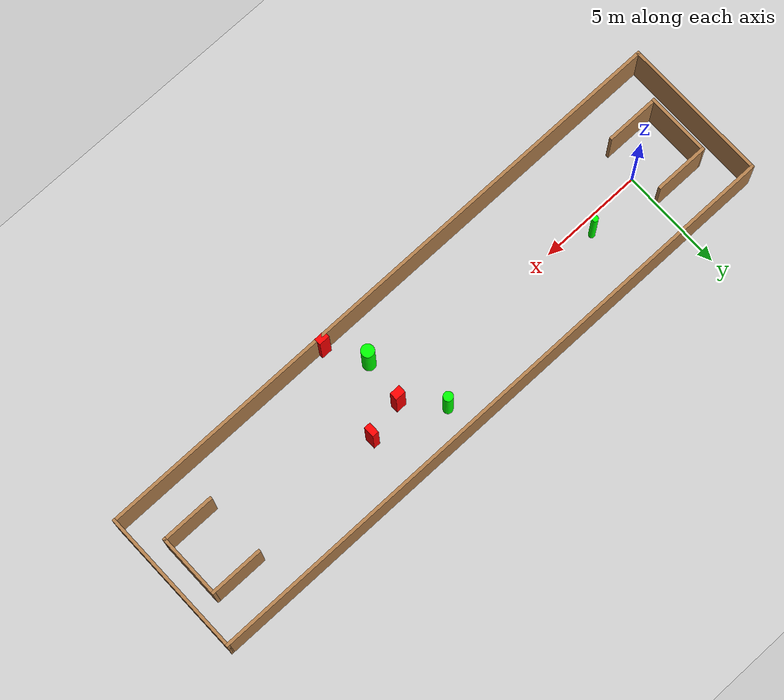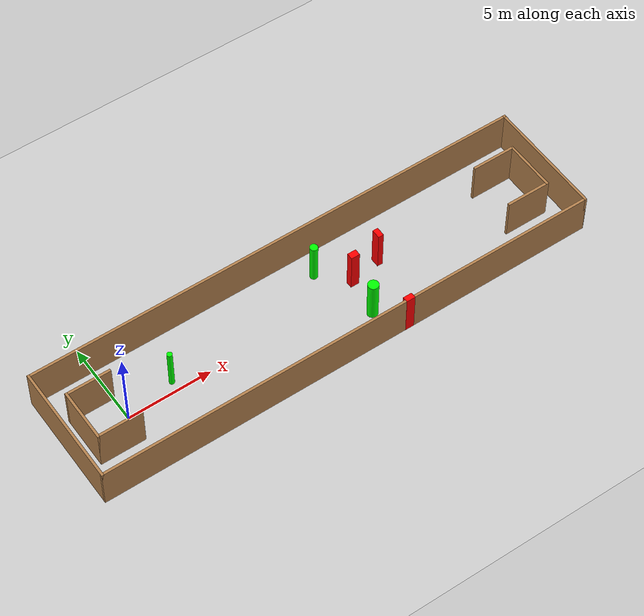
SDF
<sdf version="1.7">
 <world name="default">
  <light name="sun" type="directional">
   <pose>0 0 10 0 -0 0</pose>
   <diffuse>0.8 0.8 0.8 1</diffuse>
   <specular>0.2 0.2 0.2 1</specular>
   <attenuation>
    <range>1000</range>
    <constant>0.9</constant>
    <linear>0.01</linear>
    <quadratic>0.001</quadratic>
   </attenuation>
   <direction>-0.5 0.1 -0.9</direction>
   <spot><inner_angle>0</inner_angle><outer_angle>0</outer_angle><falloff>0</falloff></spot>
  </light>
  <model name="ground_plane">
   <static>1</static>
   <link name="link">
    <collision name="collision">
     <geometry><plane><normal>0 0 1</normal><size>100 100</size></plane></geometry>
     <surface>
      <contact><collide_bitmask>65535</collide_bitmask></contact>
      <friction><ode><mu>100</mu><mu2>50</mu2></ode></friction>
     </surface>
    </collision>
    <visual name="visual">
     <cast_shadows>0</cast_shadows>
     <geometry><plane><normal>0 0 1</normal><size>100 100</size></plane></geometry>
     <material>
      <script><uri>file://media/materials/scripts/gazebo.material</uri><name>Gazebo/Grey</name></script>
     </material>
    </visual>
   </link>
  </model>
  <gravity>0 0 -9.8</gravity>
  <magnetic_field>6e-06 2.3e-05 -4.2e-05</magnetic_field>
  <atmosphere type="adiabatic"/>
  <physics type="ode">
   <max_step_size>0.001</max_step_size>
   <real_time_factor>1</real_time_factor>
   <real_time_update_rate>1000</real_time_update_rate>
  </physics>
  <scene><ambient>0.4 0.4 0.4 1</ambient><background>0.7 0.7 0.7 1</background><shadows>1</shadows></scene>
  <spherical_coordinates>
   <surface_model>EARTH_WGS84</surface_model>
   <latitude_deg>0</latitude_deg>
   <longitude_deg>0</longitude_deg>
   <elevation>0</elevation>
   <heading_deg>0</heading_deg>
  </spherical_coordinates>
  <model name="my_base_walls">
   <link name="Wall_0">
    <collision name="Wall_0_Collision">
     <geometry><box><size>7.15 0.15 2.5</size></box></geometry>
     <pose>0 0 1.25 0 -0 0</pose>
    </collision>
    <visual name="Wall_0_Visual">
     <pose>0 0 1.25 0 -0 0</pose>
     <geometry><box><size>7.15 0.15 2.5</size></box></geometry>
     <material>
      <script><uri>file://media/materials/scripts/gazebo.material</uri><name>Gazebo/Wood</name></script>
      <ambient>1 1 1 1</ambient>
     </material>
     <meta><layer>0</layer></meta>
    </visual>
    <pose>-15 0 0 0 -0 1.5708</pose>
   </link>
   <link name="Wall_10">
    <collision name="Wall_10_Collision">
     <geometry><box><size>2.65 0.15 2.5</size></box></geometry>
     <pose>0 0 1.25 0 -0 0</pose>
    </collision>
    <visual name="Wall_10_Visual">
     <pose>0 0 1.25 0 -0 0</pose>
     <geometry><box><size>2.65 0.15 2.5</size></box></geometry>
     <material>
      <script><uri>file://media/materials/scripts/gazebo.material</uri><name>Gazebo/Wood</name></script>
      <ambient>1 1 1 1</ambient>
     </material>
     <meta><layer>0</layer></meta>
    </visual>
    <pose>-12.75 -1.5 0 0 -0 0</pose>
   </link>
   <link name="Wall_12">
    <collision name="Wall_12_Collision">
     <geometry><box><size>2.65 0.15 2.5</size></box></geometry>
     <pose>0 0 1.25 0 -0 0</pose>
    </collision>
    <visual name="Wall_12_Visual">
     <pose>0 0 1.25 0 -0 0</pose>
     <geometry><box><size>2.65 0.15 2.5</size></box></geometry>
     <material>
      <script><uri>file://media/materials/scripts/gazebo.material</uri><name>Gazebo/Wood</name></script>
      <ambient>1 1 1 1</ambient>
     </material>
     <meta><layer>0</layer></meta>
    </visual>
    <pose>-12.75 1.5 0 0 -0 0</pose>
   </link>
   <link name="Wall_14">
    <collision name="Wall_14_Collision">
     <geometry><box><size>3.15 0.15 2.5</size></box></geometry>
     <pose>0 0 1.25 0 -0 0</pose>
    </collision>
    <visual name="Wall_14_Visual">
     <pose>0 0 1.25 0 -0 0</pose>
     <geometry><box><size>3.15 0.15 2.5</size></box></geometry>
     <material>
      <script><uri>file://media/materials/scripts/gazebo.material</uri><name>Gazebo/Wood</name></script>
      <ambient>1 1 1 1</ambient>
     </material>
     <meta><layer>0</layer></meta>
    </visual>
    <pose>14 0 0 0 -0 -1.5708</pose>
   </link>
   <link name="Wall_15">
    <collision name="Wall_15_Collision">
     <geometry><box><size>2.65 0.15 2.5</size></box></geometry>
     <pose>0 0 1.25 0 -0 0</pose>
    </collision>
    <visual name="Wall_15_Visual">
     <pose>0 0 1.25 0 -0 0</pose>
     <geometry><box><size>2.65 0.15 2.5</size></box></geometry>
     <material>
      <script><uri>file://media/materials/scripts/gazebo.material</uri><name>Gazebo/Wood</name></script>
      <ambient>1 1 1 1</ambient>
     </material>
     <meta><layer>0</layer></meta>
    </visual>
    <pose>12.75 -1.5 0 0 -0 3.14159</pose>
   </link>
   <link name="Wall_17">
    <collision name="Wall_17_Collision">
     <geometry><box><size>2.65 0.15 2.5</size></box></geometry>
     <pose>0 0 1.25 0 -0 0</pose>
    </collision>
    <visual name="Wall_17_Visual">
     <pose>0 0 1.25 0 -0 0</pose>
     <geometry><box><size>2.65 0.15 2.5</size></box></geometry>
     <material>
      <script><uri>file://media/materials/scripts/gazebo.material</uri><name>Gazebo/Wood</name></script>
      <ambient>1 1 1 1</ambient>
     </material>
     <meta><layer>0</layer></meta>
    </visual>
    <pose>12.75 1.5 0 0 -0 3.14159</pose>
   </link>
   <link name="Wall_2">
    <collision name="Wall_2_Collision">
     <geometry><box><size>30.15 0.15 2.5</size></box></geometry>
     <pose>0 0 1.25 0 -0 0</pose>
    </collision>
    <visual name="Wall_2_Visual">
     <pose>0 0 1.25 0 -0 0</pose>
     <geometry><box><size>30.15 0.15 2.5</size></box></geometry>
     <material>
      <script><uri>file://media/materials/scripts/gazebo.material</uri><name>Gazebo/Wood</name></script>
      <ambient>1 1 1 1</ambient>
     </material>
     <meta><layer>0</layer></meta>
    </visual>
    <pose>-0 -3.5 0 0 -0 0</pose>
   </link>
   <link name="Wall_4">
    <collision name="Wall_4_Collision">
     <geometry><box><size>30.15 0.15 2.5</size></box></geometry>
     <pose>0 0 1.25 0 -0 0</pose>
    </collision>
    <visual name="Wall_4_Visual">
     <pose>0 0 1.25 0 -0 0</pose>
     <geometry><box><size>30.15 0.15 2.5</size></box></geometry>
     <material>
      <script><uri>file://media/materials/scripts/gazebo.material</uri><name>Gazebo/Wood</name></script>
      <ambient>1 1 1 1</ambient>
     </material>
     <meta><layer>0</layer></meta>
    </visual>
    <pose>-0 3.5 0 0 -0 0</pose>
   </link>
   <link name="Wall_6">
    <collision name="Wall_6_Collision">
     <geometry><box><size>7.15 0.15 2.5</size></box></geometry>
     <pose>0 0 1.25 0 -0 0</pose>
    </collision>
    <visual name="Wall_6_Visual">
     <pose>0 0 1.25 0 -0 0</pose>
     <geometry><box><size>7.15 0.15 2.5</size></box></geometry>
     <material>
      <script><uri>file://media/materials/scripts/gazebo.material</uri><name>Gazebo/Wood</name></script>
      <ambient>1 1 1 1</ambient>
     </material>
     <meta><layer>0</layer></meta>
    </visual>
    <pose>15 0 0 0 -0 -1.5708</pose>
   </link>
   <link name="Wall_9">
    <collision name="Wall_9_Collision">
     <geometry><box><size>3.15 0.15 2.5</size></box></geometry>
     <pose>0 0 1.25 0 -0 0</pose>
    </collision>
    <visual name="Wall_9_Visual">
     <pose>0 0 1.25 0 -0 0</pose>
     <geometry><box><size>3.15 0.15 2.5</size></box></geometry>
     <material>
      <script><uri>file://media/materials/scripts/gazebo.material</uri><name>Gazebo/Wood</name></script>
      <ambient>1 1 1 1</ambient>
     </material>
     <meta><layer>0</layer></meta>
    </visual>
    <pose>-14 0 0 0 -0 -1.5708</pose>
   </link>
   <static>1</static>
   <pose>11.5 0 0 0 -0 0</pose>
  </model>
  <model name="cylinder1">
   <static>1</static>
   <link name="link">
    <inertial>
     <mass>1</mass>
     <inertia><ixx>0.5</ixx><ixy>0</ixy><ixz>0</ixz><iyy>0.5</iyy><iyz>0</iyz><izz>1</izz></inertia>
    </inertial>
    <collision name="collision">
     <geometry><cylinder><radius>0.3081250263759282</radius><length>2.5</length></cylinder></geometry>
    </collision>
    <visual name="visual">
     <geometry><cylinder><radius>0.3081250263759282</radius><length>2.5</length></cylinder></geometry>
     <material>
      <ambient>0 1 0 1</ambient>
      <diffuse>0 1 0 1</diffuse>
      <specular>0.1 0.1 0.1 1</specular>
      <emissive>0 0 0 0</emissive>
     </material>
    </visual>
   </link>
   <pose>13.986948760710941 -1.6997066002150787 1.25 0 0 0</pose>
  </model>
  <model name="cylinder2">
   <static>1</static>
   <link name="link">
    <inertial>
     <mass>1</mass>
     <inertia><ixx>0.5</ixx><ixy>0</ixy><ixz>0</ixz><iyy>0.5</iyy><iyz>0</iyz><izz>1</izz></inertia>
    </inertial>
    <collision name="collision">
     <geometry><cylinder><radius>0.22767992805570855</radius><length>2.5</length></cylinder></geometry>
    </collision>
    <visual name="visual">
     <geometry><cylinder><radius>0.22767992805570855</radius><length>2.5</length></cylinder></geometry>
     <material>
      <ambient>0 1 0 1</ambient>
      <diffuse>0 1 0 1</diffuse>
      <specular>0.1 0.1 0.1 1</specular>
      <emissive>0 0 0 0</emissive>
     </material>
    </visual>
   </link>
   <pose>12.845415004026396 2.0308463035314297 1.25 0 0 0</pose>
  </model>
  <model name="cylinder3">
   <static>1</static>
   <link name="link">
    <inertial>
     <mass>1</mass>
     <inertia><ixx>0.5</ixx><ixy>0</ixy><ixz>0</ixz><iyy>0.5</iyy><iyz>0</iyz><izz>1</izz></inertia>
    </inertial>
    <collision name="collision">
     <geometry><cylinder><radius>0.1514212306910115</radius><length>2.5</length></cylinder></geometry>
    </collision>
    <visual name="visual">
     <geometry><cylinder><radius>0.1514212306910115</radius><length>2.5</length></cylinder></geometry>
     <material>
      <ambient>0 1 0 1</ambient>
      <diffuse>0 1 0 1</diffuse>
      <specular>0.1 0.1 0.1 1</specular>
      <emissive>0 0 0 0</emissive>
     </material>
    </visual>
   </link>
   <pose>3.0102986492444117 0.6115488802029994 1.25 0 0 0</pose>
  </model>
  <model name="box1">
   <static>1</static>
   <link name="link">
    <inertial>
     <mass>1</mass>
     <inertia><ixx>0.083</ixx><ixy>0</ixy><ixz>0</ixz><iyy>0.083</iyy><iyz>0</iyz><izz>0.083</izz></inertia>
    </inertial>
    <collision name="collision">
     <geometry><box><size>0.5177867895765189 0.38380141849358795 2.5</size></box></geometry>
    </collision>
    <visual name="visual">
     <geometry><box><size>0.5177867895765189 0.38380141849358795 2.5</size></box></geometry>
     <material>
      <ambient>1 0 0 1</ambient>
      <diffuse>1 0 0 1</diffuse>
      <specular>0.1 0.1 0.1 1</specular>
      <emissive>0 0 0 0</emissive>
     </material>
    </visual>
    <sensor name="my_contact" type="contact">
     <contact><collision>box_collision</collision><topic>__default_topic__</topic></contact>
    </sensor>
   </link>
   <pose>14.28496696737773 0.4796374098944991 1.25 0 0 0</pose>
  </model>
  <model name="box2">
   <static>1</static>
   <link name="link">
    <inertial>
     <mass>1</mass>
     <inertia><ixx>0.083</ixx><ixy>0</ixy><ixz>0</ixz><iyy>0.083</iyy><iyz>0</iyz><izz>0.083</izz></inertia>
    </inertial>
    <collision name="collision">
     <geometry><box><size>0.5312484866472635 0.3282508659739895 2.5</size></box></geometry>
    </collision>
    <visual name="visual">
     <geometry><box><size>0.5312484866472635 0.3282508659739895 2.5</size></box></geometry>
     <material>
      <ambient>1 0 0 1</ambient>
      <diffuse>1 0 0 1</diffuse>
      <specular>0.1 0.1 0.1 1</specular>
      <emissive>0 0 0 0</emissive>
     </material>
    </visual>
    <sensor name="my_contact" type="contact">
     <contact><collision>box_collision</collision><topic>__default_topic__</topic></contact>
    </sensor>
   </link>
   <pose>15.02202100361588 -3.4140137461089766 1.25 0 0 0</pose>
  </model>
  <model name="box3">
   <static>1</static>
   <link name="link">
    <inertial>
     <mass>1</mass>
     <inertia><ixx>0.083</ixx><ixy>0</ixy><ixz>0</ixz><iyy>0.083</iyy><iyz>0</iyz><izz>0.083</izz></inertia>
    </inertial>
    <collision name="collision">
     <geometry><box><size>0.32279806603969813 0.533629640315213 2.5</size></box></geometry>
    </collision>
    <visual name="visual">
     <geometry><box><size>0.32279806603969813 0.533629640315213 2.5</size></box></geometry>
     <material>
      <ambient>1 0 0 1</ambient>
      <diffuse>1 0 0 1</diffuse>
      <specular>0.1 0.1 0.1 1</specular>
      <emissive>0 0 0 0</emissive>
     </material>
    </visual>
    <sensor name="my_contact" type="contact">
     <contact><collision>box_collision</collision><topic>__default_topic__</topic></contact>
    </sensor>
   </link>
   <pose>16.157894065761834 0.8990069723536553 1.25 0 0 0</pose>
  </model>
 </world>
</sdf>
